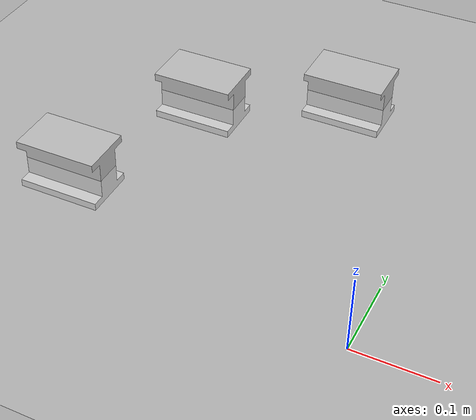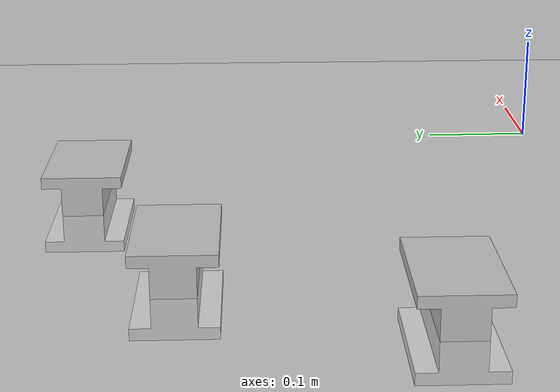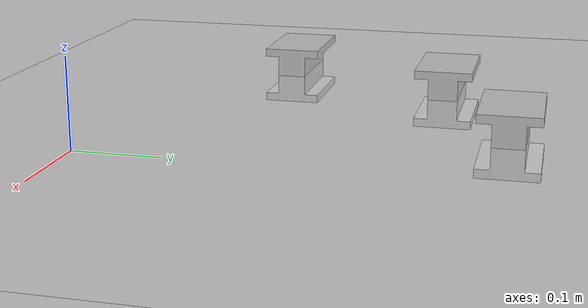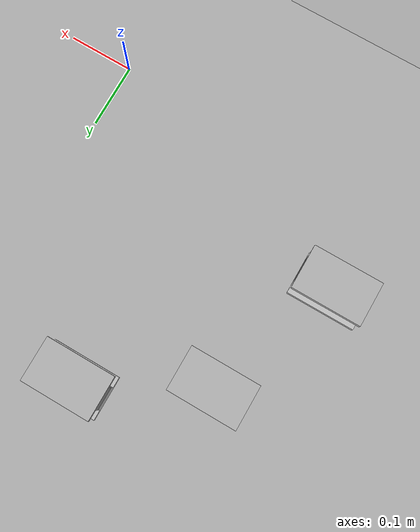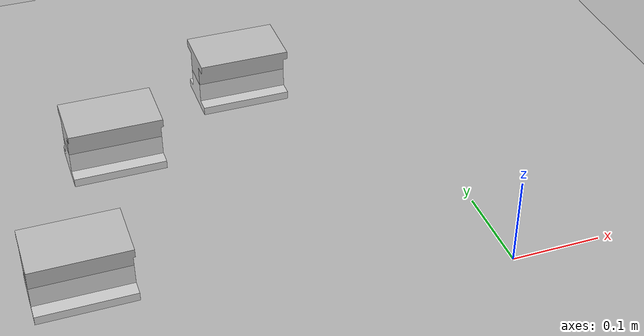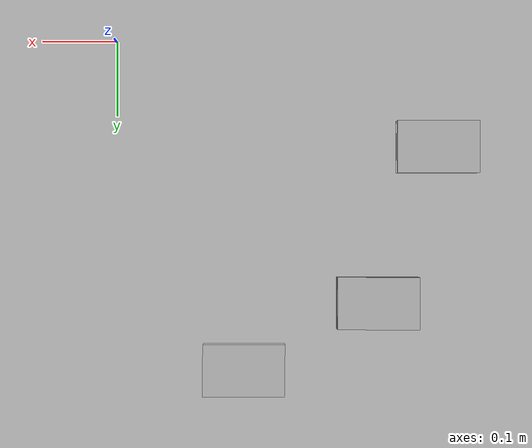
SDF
<?xml version="1.0" ?>
<sdf version="1.5">
  <world name="robomaster_rale">
    <light type="directional" name="my_light">
      <pose>0 0 10 0 0 0</pose>
    </light>
    <include>
      <uri>model://sun</uri>
    </include>
    <include>
      <uri>model://ground_plane</uri>
    </include>

    <include>
      <name>aruco_i_block</name>
      <uri>model://aruco_block_long</uri>
      <static>0</static>
      <pose> -0.17 0.44 0 0 0 0</pose>
    </include>

    <include>
      <name>aruco_i_block_2</name>
      <uri>model://aruco_block_long_2</uri>
      <static>0</static>
      <pose>-0.43 0.14 0 0 0 0</pose>
    </include>

    <include>
      <name>aruco_i_block_3</name>
      <uri>model://aruco_block_long_3</uri>
      <static>0</static>
      <pose>-0.35 0.35 0 0 0 0</pose>
    </include>
  </world>
</sdf>

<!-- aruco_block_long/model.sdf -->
<sdf version="1.5">
  <model name="aruco_block_long">
    <static>false</static>
    <link name="link">
      <inertial>
        <mass>0.08</mass>
        <inertia>
          <ixx>1.45e-4</ixx>
          <ixy>0.0</ixy>
          <ixz>0.0</ixz>
          <iyy>1.45e-4</iyy>
          <iyz>0.0</iyz>
          <izz>1.45e-4</izz>
        </inertia>
      </inertial>
      <collision name="collision">
        <geometry>
          <mesh>
            <scale>1 1 1</scale>
            <uri>model://aruco_block_long/meshes/block_long.dae</uri>
          </mesh>
        </geometry>
      </collision>
      <contact>
      	<lateral_friction value="1.0"/>
      	<rolling_friction value="1.0"/>
      	<inertia_scaling value="3.0"/>
      	<contact_cfm value="0.0"/>
      	<contact_erp value="1.0"/>
      </contact>
      <visual name="visual">
        <geometry>
          <mesh>
            <scale>1 1 1</scale>
            <uri>model://aruco_block_long/meshes/block_long.dae</uri>
          </mesh>
        </geometry>
      </visual>
    </link>
  </model>
</sdf>

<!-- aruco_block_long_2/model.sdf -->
<sdf version="1.5">
  <model name="aruco_block_long_2">
    <static>false</static>
    <link name="link">
      <inertial>
        <mass>0.08</mass>
        <inertia>
          <ixx>1.45e-4</ixx>
          <ixy>0.0</ixy>
          <ixz>0.0</ixz>
          <iyy>1.45e-4</iyy>
          <iyz>0.0</iyz>
          <izz>1.45e-4</izz>
        </inertia>
      </inertial>
      <collision name="collision">
        <geometry>
          <mesh>
            <scale>1 1 1</scale>
            <uri>model://aruco_block_long_2/meshes/block_long.dae</uri>
          </mesh>
        </geometry>
        <surface>
          <friction>
            <ode>
              <mu>1.2</mu>
              <mu2>1.2</mu2>
            </ode>
          </friction>
        </surface>
      </collision>
      <visual name="visual">
        <geometry>
          <mesh>
            <scale>1 1 1</scale>
            <uri>model://aruco_block_long_2/meshes/block_long.dae</uri>
          </mesh>
        </geometry>
      </visual>
    </link>
  </model>
</sdf>

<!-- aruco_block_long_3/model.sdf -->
<sdf version="1.5">
  <model name="aruco_block_long_3">
    <static>false</static>
    <link name="link">
      <inertial>
        <mass>0.08</mass>
        <inertia>
          <ixx>1.45e-4</ixx>
          <ixy>0.0</ixy>
          <ixz>0.0</ixz>
          <iyy>1.45e-4</iyy>
          <iyz>0.0</iyz>
          <izz>1.45e-4</izz>
        </inertia>
      </inertial>
      <collision name="collision">
        <geometry>
          <mesh>
            <scale>1 1 1</scale>
            <uri>model://aruco_block_long_3/meshes/block_long.dae</uri>
          </mesh>
        </geometry>
        <surface>
          <friction>
            <ode>
              <mu>1.2</mu>
              <mu2>1.2</mu2>
            </ode>
          </friction>
        </surface>
      </collision>
      <visual name="visual">
        <geometry>
          <mesh>
            <scale>1 1 1</scale>
            <uri>model://aruco_block_long_3/meshes/block_long.dae</uri>
          </mesh>
        </geometry>
      </visual>
    </link>
  </model>
</sdf>
